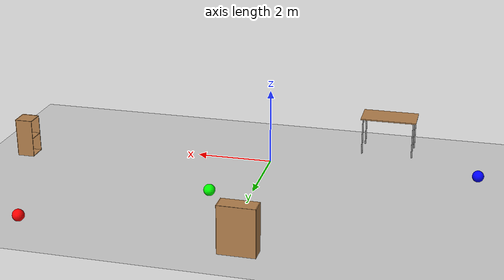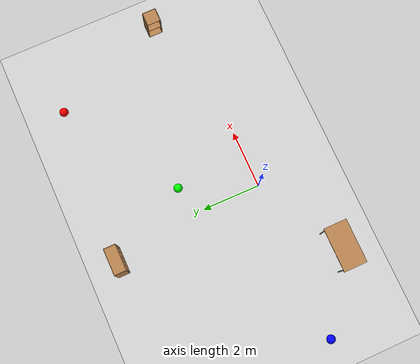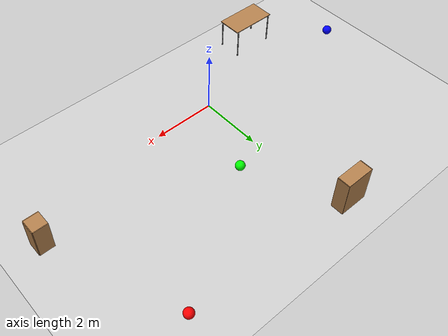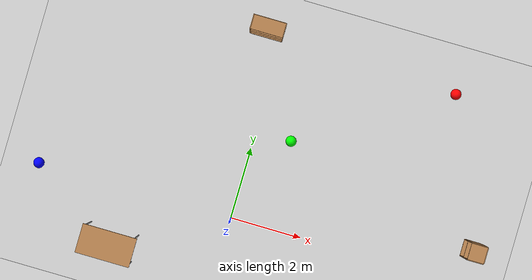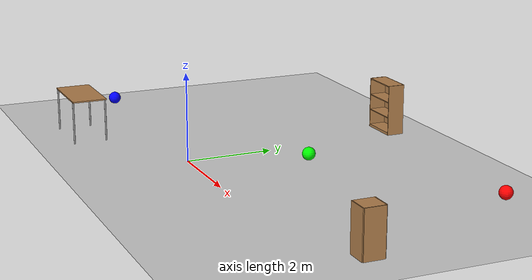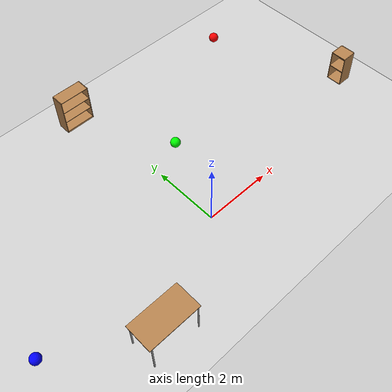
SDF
<sdf version="1.5">
 <world name="default">
  <include><uri>model://ground_plane</uri></include>
  <include><uri>model://sun</uri></include>
  <model name="unit_sphere_3">
   <static>1</static>
   <pose>-5.5 0 0.15 0 -0 0</pose>
   <link name="link">
    <inertial>
     <mass>1</mass>
     <inertia><ixx>1</ixx><ixy>0</ixy><ixz>0</ixz><iyy>1</iyy><iyz>0</iyz><izz>1</izz></inertia>
    </inertial>
    <collision name="collision"><geometry><sphere><radius>0.15</radius></sphere></geometry></collision>
    <visual name="visual">
     <material>
      <ambient>0 0 1 1</ambient>
      <diffuse>0 0 1 1</diffuse>
      <specular>0.1 0.1 0.1 1</specular>
      <emissive>0 0 0 0</emissive>
     </material>
     <geometry><sphere><radius>0.15</radius></sphere></geometry>
     <material>
      <script><uri>file://media/materials/scripts/gazebo.material</uri><name>Gazebo/White</name></script>
     </material>
    </visual>
    <velocity_decay><linear>0</linear><angular>0</angular></velocity_decay>
   </link>
  </model>
  <model name="unit_sphere_1">
   <static>1</static>
   <pose>5 5 0.15 0 -0 0</pose>
   <link name="link">
    <inertial>
     <mass>1</mass>
     <inertia><ixx>1</ixx><ixy>0</ixy><ixz>0</ixz><iyy>1</iyy><iyz>0</iyz><izz>1</izz></inertia>
    </inertial>
    <collision name="collision"><geometry><sphere><radius>0.15</radius></sphere></geometry></collision>
    <visual name="visual">
     <material>
      <ambient>1 0 0 1</ambient>
      <diffuse>1 0 0 1</diffuse>
      <specular>0.1 0.1 0.1 1</specular>
      <emissive>0 0 0 0</emissive>
     </material>
     <geometry><sphere><radius>0.15</radius></sphere></geometry>
     <material>
      <script><uri>file://media/materials/scripts/gazebo.material</uri><name>Gazebo/White</name></script>
     </material>
    </visual>
    <velocity_decay><linear>0</linear><angular>0</angular></velocity_decay>
   </link>
  </model>
  <model name="unit_sphere_2">
   <static>1</static>
   <pose>1 2.5 0.15 0 -0 0</pose>
   <link name="link">
    <inertial>
     <mass>1</mass>
     <inertia><ixx>1</ixx><ixy>0</ixy><ixz>0</ixz><iyy>1</iyy><iyz>0</iyz><izz>1</izz></inertia>
    </inertial>
    <collision name="collision"><geometry><sphere><radius>0.15</radius></sphere></geometry></collision>
    <visual name="visual">
     <material>
      <ambient>0 1 0 1</ambient>
      <diffuse>0 1 0 1</diffuse>
      <specular>0.1 0.1 0.1 1</specular>
      <emissive>0 0 0 0</emissive>
     </material>
     <geometry><sphere><radius>0.15</radius></sphere></geometry>
     <material>
      <script><uri>file://media/materials/scripts/gazebo.material</uri><name>Gazebo/White</name></script>
     </material>
    </visual>
    <velocity_decay><linear>0</linear><angular>0</angular></velocity_decay>
   </link>
  </model>
  <model name="bookshelf">
   <static>0</static>
   <link name="link">
    <inertial><mass>1</mass></inertial>
    <collision name="back">
     <pose>0 0.005 0.6 0 -0 0</pose>
     <geometry><box><size>0.9 0.01 1.2</size></box></geometry>
    </collision>
    <visual name="visual1">
     <pose>0 0.005 0.6 0 -0 0</pose>
     <geometry><box><size>0.9 0.01 1.2</size></box></geometry>
     <material>
      <script><uri>file://media/materials/scripts/gazebo.material</uri><name>Gazebo/Wood</name></script>
     </material>
    </visual>
    <collision name="left_side">
     <pose>0.45 -0.195 0.6 0 -0 0</pose>
     <geometry><box><size>0.02 0.4 1.2</size></box></geometry>
    </collision>
    <visual name="visual2">
     <pose>0.45 -0.195 0.6 0 -0 0</pose>
     <geometry><box><size>0.02 0.4 1.2</size></box></geometry>
     <material>
      <script><uri>file://media/materials/scripts/gazebo.material</uri><name>Gazebo/Wood</name></script>
     </material>
    </visual>
    <collision name="right_side">
     <pose>-0.45 -0.195 0.6 0 -0 0</pose>
     <geometry><box><size>0.02 0.4 1.2</size></box></geometry>
    </collision>
    <visual name="visual3">
     <pose>-0.45 -0.195 0.6 0 -0 0</pose>
     <geometry><box><size>0.02 0.4 1.2</size></box></geometry>
     <material>
      <script><uri>file://media/materials/scripts/gazebo.material</uri><name>Gazebo/Wood</name></script>
     </material>
    </visual>
    <collision name="bottom">
     <pose>0 -0.195 0.03 0 -0 0</pose>
     <geometry><box><size>0.88 0.4 0.06</size></box></geometry>
    </collision>
    <visual name="visual4">
     <pose>0 -0.195 0.03 0 -0 0</pose>
     <geometry><box><size>0.88 0.4 0.06</size></box></geometry>
     <material>
      <script><uri>file://media/materials/scripts/gazebo.material</uri><name>Gazebo/Wood</name></script>
     </material>
    </visual>
    <collision name="top">
     <pose>0 -0.195 1.19 0 -0 0</pose>
     <geometry><box><size>0.88 0.4 0.02</size></box></geometry>
    </collision>
    <visual name="visual5">
     <pose>0 -0.195 1.19 0 -0 0</pose>
     <geometry><box><size>0.88 0.4 0.02</size></box></geometry>
     <material>
      <script><uri>file://media/materials/scripts/gazebo.material</uri><name>Gazebo/Wood</name></script>
     </material>
    </visual>
    <collision name="low_shelf">
     <pose>0 -0.195 0.43 0 -0 0</pose>
     <geometry><box><size>0.88 0.4 0.02</size></box></geometry>
    </collision>
    <visual name="visual6">
     <pose>0 -0.195 0.43 0 -0 0</pose>
     <geometry><box><size>0.88 0.4 0.02</size></box></geometry>
     <material>
      <script><uri>file://media/materials/scripts/gazebo.material</uri><name>Gazebo/Wood</name></script>
     </material>
    </visual>
    <collision name="high_shelf">
     <pose>0 -0.195 0.8 0 -0 0</pose>
     <geometry><box><size>0.88 0.4 0.02</size></box></geometry>
    </collision>
    <visual name="visual7">
     <pose>0 -0.195 0.8 0 -0 0</pose>
     <geometry><box><size>0.88 0.4 0.02</size></box></geometry>
     <material>
      <script><uri>file://media/materials/scripts/gazebo.material</uri><name>Gazebo/Wood</name></script>
     </material>
    </visual>
    <velocity_decay><linear>0</linear><angular>0</angular></velocity_decay>
   </link>
   <pose>-0.462025 5.45256 0 0 -0 0</pose>
  </model>
  <model name="table">
   <static>0</static>
   <link name="link">
    <collision name="surface">
     <pose>0 0 1 0 -0 0</pose>
     <geometry><box><size>1.5 0.8 0.03</size></box></geometry>
    </collision>
    <visual name="visual1">
     <pose>0 0 1 0 -0 0</pose>
     <geometry><box><size>1.5 0.8 0.03</size></box></geometry>
     <material>
      <script><uri>file://media/materials/scripts/gazebo.material</uri><name>Gazebo/Wood</name></script>
     </material>
    </visual>
    <collision name="front_left_leg">
     <pose>0.68 0.38 0.5 0 -0 0</pose>
     <geometry><cylinder><radius>0.02</radius><length>1</length></cylinder></geometry>
    </collision>
    <visual name="front_left_leg">
     <pose>0.68 0.38 0.5 0 -0 0</pose>
     <geometry><cylinder><radius>0.02</radius><length>1</length></cylinder></geometry>
     <material>
      <script><uri>file://media/materials/scripts/gazebo.material</uri><name>Gazebo/Grey</name></script>
     </material>
    </visual>
    <collision name="front_right_leg">
     <pose>0.68 -0.38 0.5 0 -0 0</pose>
     <geometry><cylinder><radius>0.02</radius><length>1</length></cylinder></geometry>
    </collision>
    <visual name="front_right_leg">
     <pose>0.68 -0.38 0.5 0 -0 0</pose>
     <geometry><cylinder><radius>0.02</radius><length>1</length></cylinder></geometry>
     <material>
      <script><uri>file://media/materials/scripts/gazebo.material</uri><name>Gazebo/Grey</name></script>
     </material>
    </visual>
    <collision name="back_right_leg">
     <pose>-0.68 -0.38 0.5 0 -0 0</pose>
     <geometry><cylinder><radius>0.02</radius><length>1</length></cylinder></geometry>
    </collision>
    <visual name="back_right_leg">
     <pose>-0.68 -0.38 0.5 0 -0 0</pose>
     <geometry><cylinder><radius>0.02</radius><length>1</length></cylinder></geometry>
     <material>
      <script><uri>file://media/materials/scripts/gazebo.material</uri><name>Gazebo/Grey</name></script>
     </material>
    </visual>
    <collision name="back_left_leg">
     <pose>-0.68 0.38 0.5 0 -0 0</pose>
     <geometry><cylinder><radius>0.02</radius><length>1</length></cylinder></geometry>
    </collision>
    <visual name="back_left_leg">
     <pose>-0.68 0.38 0.5 0 -0 0</pose>
     <geometry><cylinder><radius>0.02</radius><length>1</length></cylinder></geometry>
     <material>
      <script><uri>file://media/materials/scripts/gazebo.material</uri><name>Gazebo/Grey</name></script>
     </material>
    </visual>
    <velocity_decay><linear>0</linear><angular>0</angular></velocity_decay>
   </link>
   <pose>-3 -1.56047 0 0 -0 0</pose>
  </model>
  <model name="cabinet">
   <static>0</static>
   <link name="cabinet_bottom_plate">
    <inertial>
     <pose>0 0 -1 0 -0 0</pose>
     <inertia><ixx>2.05</ixx><ixy>0</ixy><ixz>0</ixz><iyy>2.05</iyy><iyz>0</iyz><izz>2.05</izz></inertia>
     <mass>25</mass>
    </inertial>
    <collision name="cabinet_bottom_plate_geom">
     <pose>0 0 0.01 0 -0 0</pose>
     <geometry><box><size>0.45 0.45 0.02</size></box></geometry>
    </collision>
    <visual name="cabinet_bottom_plate_geom_visual">
     <pose>0 0 0.01 0 -0 0</pose>
     <geometry><box><size>0.45 0.45 0.02</size></box></geometry>
     <material>
      <script><uri>file://media/materials/scripts/gazebo.material</uri><name>Gazebo/Wood</name></script>
     </material>
    </visual>
    <collision name="cabinet_bottom_plate_geom_cabinet_back_plate">
     <pose>0.235 0 0.51 0 -0 0</pose>
     <geometry><box><size>0.02 0.45 1.02</size></box></geometry>
    </collision>
    <visual name="cabinet_bottom_plate_geom_cabinet_back_plate_visual">
     <pose>0.235 0 0.51 0 -0 0</pose>
     <geometry><box><size>0.02 0.45 1.02</size></box></geometry>
     <material>
      <script><uri>file://media/materials/scripts/gazebo.material</uri><name>Gazebo/Wood</name></script>
     </material>
    </visual>
    <collision name="cabinet_bottom_plate_geom_cabinet_left_plate">
     <pose>0 0.235 0.51 0 -0 0</pose>
     <geometry><box><size>0.45 0.02 1.02</size></box></geometry>
    </collision>
    <visual name="cabinet_bottom_plate_geom_cabinet_left_plate_visual">
     <pose>0 0.235 0.51 0 -0 0</pose>
     <geometry><box><size>0.45 0.02 1.02</size></box></geometry>
     <material>
      <script><uri>file://media/materials/scripts/gazebo.material</uri><name>Gazebo/Wood</name></script>
     </material>
    </visual>
    <collision name="cabinet_bottom_plate_geom_cabinet_middle_plate">
     <pose>0 0 0.51 0 -0 0</pose>
     <geometry><box><size>0.45 0.45 0.02</size></box></geometry>
    </collision>
    <visual name="cabinet_bottom_plate_geom_cabinet_middle_plate_visual">
     <pose>0 0 0.51 0 -0 0</pose>
     <geometry><box><size>0.45 0.45 0.02</size></box></geometry>
     <material>
      <script><uri>file://media/materials/scripts/gazebo.material</uri><name>Gazebo/Wood</name></script>
     </material>
    </visual>
    <collision name="cabinet_bottom_plate_geom_cabinet_right_plate">
     <pose>0 -0.235 0.51 0 -0 0</pose>
     <geometry><box><size>0.45 0.02 1.02</size></box></geometry>
    </collision>
    <visual name="cabinet_bottom_plate_geom_cabinet_right_plate_visual">
     <pose>0 -0.235 0.51 0 -0 0</pose>
     <geometry><box><size>0.45 0.02 1.02</size></box></geometry>
     <material>
      <script><uri>file://media/materials/scripts/gazebo.material</uri><name>Gazebo/Wood</name></script>
     </material>
    </visual>
    <collision name="cabinet_bottom_plate_geom_cabinet_top_plate">
     <pose>0 0 1.01 0 -0 0</pose>
     <geometry><box><size>0.45 0.45 0.02</size></box></geometry>
    </collision>
    <visual name="cabinet_bottom_plate_geom_cabinet_top_plate_visual">
     <pose>0 0 1.01 0 -0 0</pose>
     <geometry><box><size>0.45 0.45 0.02</size></box></geometry>
     <material>
      <script><uri>file://media/materials/scripts/gazebo.material</uri><name>Gazebo/Wood</name></script>
     </material>
    </visual>
    <velocity_decay><linear>0</linear><angular>0</angular></velocity_decay>
   </link>
   <pose>6.59201 1 0 0 -0 0</pose>
  </model>
 </world>
</sdf>
